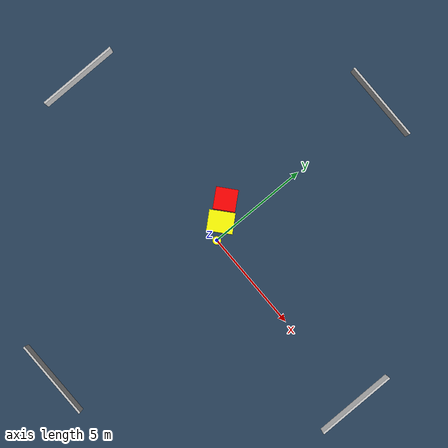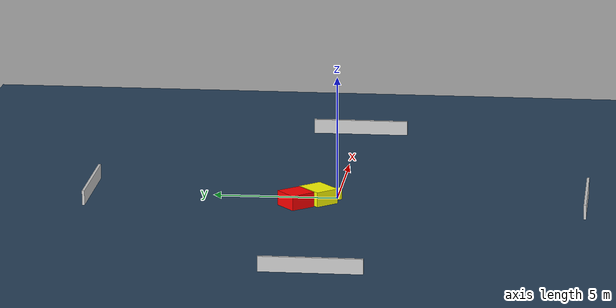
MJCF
<?xml version="1.0" ?>
<mujoco model="generated_environment">
  <option timestep="0.01" integrator="RK4" cone="elliptic"/>
  <default>
    <geom density="1"/>
  </default>
  <asset>
    <texture builtin="gradient" height="3072" name="skybox" rgb1="0.3 0.5 0.7" rgb2="0 0 0" type="skybox" width="512"/>
    <texture builtin="checker" height="300" name="groundplane" rgb1="0.2 0.3 0.4" rgb2="0.1 0.2 0.3" type="2d" width="300"/>
    <material name="groundplane" reflectance="0.2" texrepeat="5 5" texture="groundplane"/>
  </asset>
  <worldbody>
    <light dir="0 0 -1" directional="true" pos="0 0 1.5"/>
    <geom condim="3" friction="0.5 0.005 0.001" material="groundplane" name="floor" pos="0 0 0" size="0 0 0.05" type="plane"/>
    <body name="walls">
      <geom name="wall_1" condim="4" pos="-10.0 0.0 0.3" rgba="0.800000011920929 0.800000011920929 0.800000011920929 1.0" size="0.05 2.0 0.3" type="box"/>
      <geom name="wall_2" condim="4" pos="10.0 0.0 0.3" rgba="0.800000011920929 0.800000011920929 0.800000011920929 1.0" size="0.05 2.0 0.3" type="box"/>
      <geom name="wall_3" condim="4" pos="0.0 -10.0 0.3" rgba="0.800000011920929 0.800000011920929 0.800000011920929 1.0" size="2.0 0.05 0.3" type="box"/>
      <geom name="wall_4" condim="4" pos="0.0 10.0 0.3" rgba="0.800000011920929 0.800000011920929 0.800000011920929 1.0" size="2.0 0.05 0.3" type="box"/>
    </body>
    <body name="robot">
      <joint name="joint_x" type="slide" pos="0 0 0" axis="1 0 0"/>
      <joint name="joint_y" type="slide" pos="0 0 0" axis="0 1 0"/>
      <geom name="robot" type="cylinder" pos="0.0 0.0 0.2" size="0.2 0.2 0.0" mass="5.0" friction="1.0 0.005 0.0001" condim="4" rgba="1.0 1.0 0.0 1.0"/>
    </body>
    <body name="obstacle_1_movable">
      <geom name="obstacle_1_movable" condim="4" pos="-0.5438143801301284 0.6989669143674055 0.3" euler="0 0 221.19517500185884" friction="0.0 0.005 0.001" rgba="1.0 1.0 0.0 1.0" size="0.615739863431725 0.49842714957734907 0.3" type="box" mass="0.1"/>
      <joint type="free"/>
    </body>
    <body name="obstacle_2_static">
      <geom name="obstacle_2_static" condim="4" pos="-1.1989798439924677 1.5401180339469909 0.3" euler="0 0 310.3543250311854" friction="0.0 0.005 0.001" rgba="1.0 0.0 0.0 1.0" size="0.5190510662336492 0.5279618883464402 0.3" type="box"/>
    </body>
  </worldbody>
  <actuator>
    <motor name="actuator_x" joint="joint_x" gear="1" ctrlrange="-1 1"/>
    <motor name="actuator_y" joint="joint_y" gear="1" ctrlrange="-1 1"/>
  </actuator>
</mujoco>
